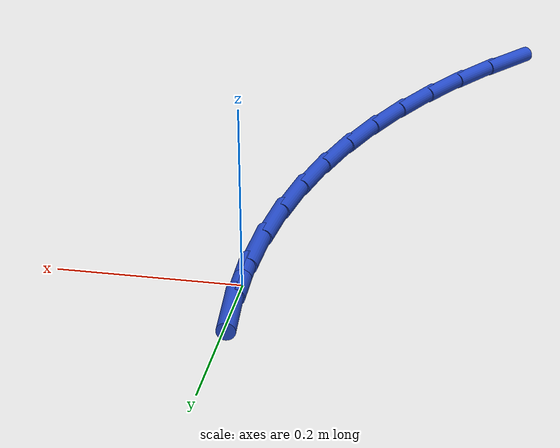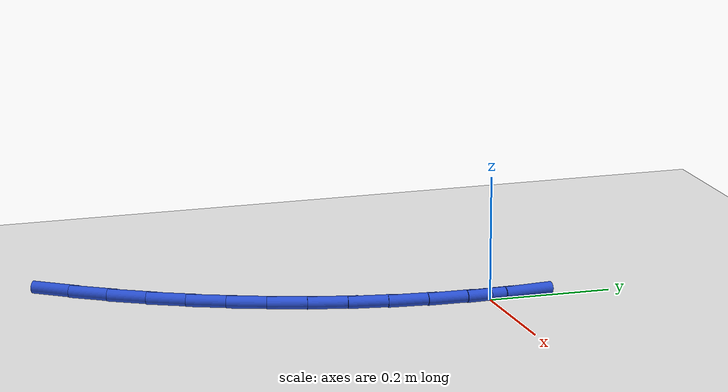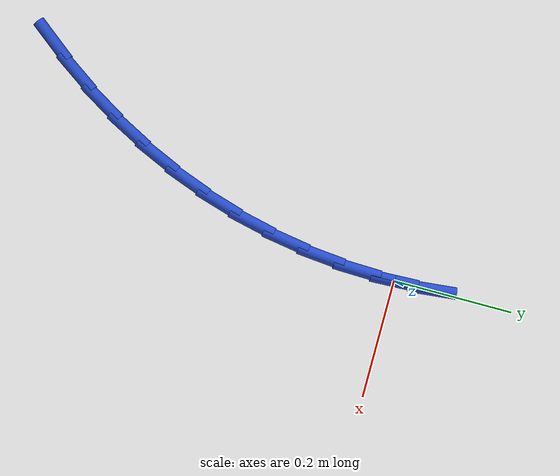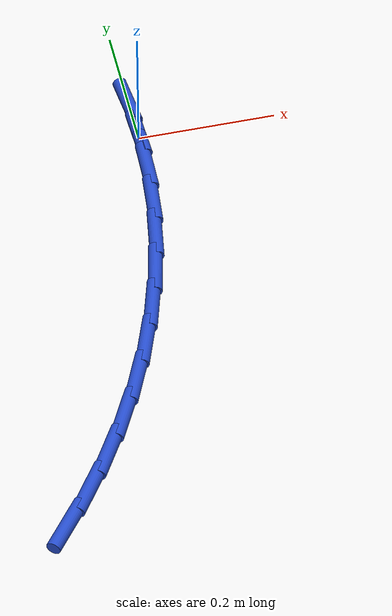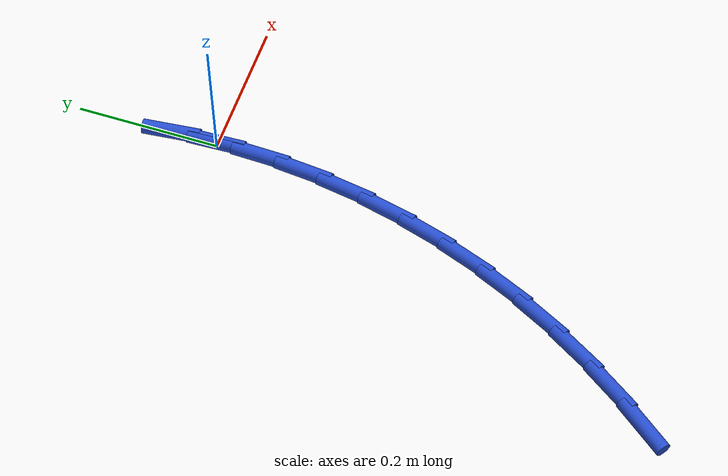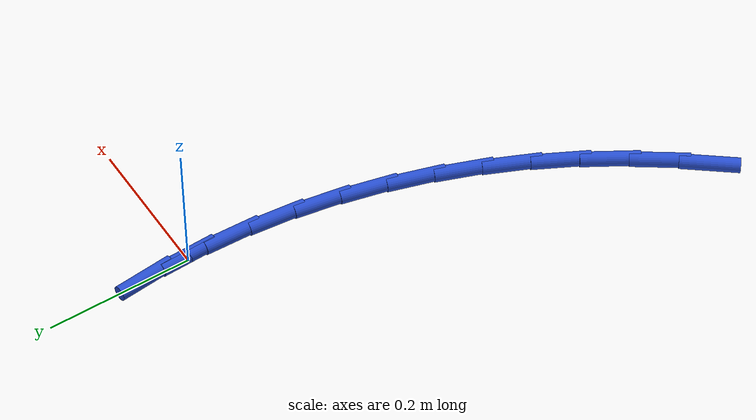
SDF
<sdf version="1.6">
 <world name="default">
  <model name="ground_plane">
   <static>1</static>
   <link name="link">
    <collision name="collision">
     <geometry><plane><normal>0 0 1</normal><size>100 100</size></plane></geometry>
     <surface><friction><ode><mu>100</mu><mu2>50</mu2></ode></friction></surface>
    </collision>
    <visual name="visual">
     <cast_shadows>0</cast_shadows>
     <geometry><plane><normal>0 0 1</normal><size>100 100</size></plane></geometry>
     <material>
      <script><uri>file://media/materials/scripts/gazebo.material</uri><name>Gazebo/WhiteGlow</name></script>
     </material>
    </visual>
   </link>
  </model>
  <model name="line">
   <link name="link_0">
    <pose>1.3877787807814457e-17 -5.551115123125783e-17 0.01 0 1.57 -1.5343372561412016</pose>
    <collision name="collision">
     <geometry><cylinder><radius>0.01</radius><length>0.08</length></cylinder></geometry>
    </collision>
    <visual name="visual">
     <material>
      <script><name>Gazebo/Blue</name><uri>file://media/materials/scripts/gazebo.material</uri></script>
     </material>
     <geometry><cylinder><radius>0.01</radius><length>0.08</length></cylinder></geometry>
    </visual>
   </link>
   <link name="link_1">
    <pose>-0.002334550586202827 0.06400371818220175 0.01 0 1.57 -1.4707915905210531</pose>
    <collision name="collision">
     <geometry><cylinder><radius>0.01</radius><length>0.08</length></cylinder></geometry>
    </collision>
    <visual name="visual">
     <material>
      <script><name>Gazebo/Blue</name><uri>file://media/materials/scripts/gazebo.material</uri></script>
     </material>
     <geometry><cylinder><radius>0.01</radius><length>0.08</length></cylinder></geometry>
    </visual>
   </link>
   <link name="link_99">
    <pose>-0.2355546036604953 -0.6451554243643389 0.01 0 1.57 0.9055986440282378</pose>
    <collision name="collision">
     <geometry><cylinder><radius>0.01</radius><length>0.08</length></cylinder></geometry>
    </collision>
    <visual name="visual">
     <material>
      <script><name>Gazebo/Blue</name><uri>file://media/materials/scripts/gazebo.material</uri></script>
     </material>
     <geometry><cylinder><radius>0.01</radius><length>0.08</length></cylinder></geometry>
    </visual>
   </link>
   <link name="link_100">
    <pose>-0.19570837294489885 -0.5943614176306186 0.01 0 1.57 0.9677367718272512</pose>
    <collision name="collision">
     <geometry><cylinder><radius>0.01</radius><length>0.08</length></cylinder></geometry>
    </collision>
    <visual name="visual">
     <material>
      <script><name>Gazebo/Blue</name><uri>file://media/materials/scripts/gazebo.material</uri></script>
     </material>
     <geometry><cylinder><radius>0.01</radius><length>0.08</length></cylinder></geometry>
    </visual>
   </link>
   <link name="link_101">
    <pose>-0.1591973502243158 -0.5413422214855411 0.01 0 1.57 1.0305575573693264</pose>
    <collision name="collision">
     <geometry><cylinder><radius>0.01</radius><length>0.08</length></cylinder></geometry>
    </collision>
    <visual name="visual">
     <material>
      <script><name>Gazebo/Blue</name><uri>file://media/materials/scripts/gazebo.material</uri></script>
     </material>
     <geometry><cylinder><radius>0.01</radius><length>0.08</length></cylinder></geometry>
    </visual>
   </link>
   <link name="link_102">
    <pose>-0.12625001712408898 -0.48640749772048814 0.01 0 1.57 1.0936674683788838</pose>
    <collision name="collision">
     <geometry><cylinder><radius>0.01</radius><length>0.08</length></cylinder></geometry>
    </collision>
    <visual name="visual">
     <material>
      <script><name>Gazebo/Blue</name><uri>file://media/materials/scripts/gazebo.material</uri></script>
     </material>
     <geometry><cylinder><radius>0.01</radius><length>0.08</length></cylinder></geometry>
    </visual>
   </link>
   <link name="link_103">
    <pose>-0.09696525306851653 -0.4297602330790332 0.01 0 1.57 1.1569260370032584</pose>
    <collision name="collision">
     <geometry><cylinder><radius>0.01</radius><length>0.08</length></cylinder></geometry>
    </collision>
    <visual name="visual">
     <material>
      <script><name>Gazebo/Blue</name><uri>file://media/materials/scripts/gazebo.material</uri></script>
     </material>
     <geometry><cylinder><radius>0.01</radius><length>0.08</length></cylinder></geometry>
    </visual>
   </link>
   <link name="link_104">
    <pose>-0.07140825051045749 -0.3715756866947242 0.01 0 1.57 1.220383617307727</pose>
    <collision name="collision">
     <geometry><cylinder><radius>0.01</radius><length>0.08</length></cylinder></geometry>
    </collision>
    <visual name="visual">
     <material>
      <script><name>Gazebo/Blue</name><uri>file://media/materials/scripts/gazebo.material</uri></script>
     </material>
     <geometry><cylinder><radius>0.01</radius><length>0.08</length></cylinder></geometry>
    </visual>
   </link>
   <link name="link_105">
    <pose>-0.04964420183187866 -0.31202911764275987 0.01 0 1.57 1.2840909810927694</pose>
    <collision name="collision">
     <geometry><cylinder><radius>0.01</radius><length>0.08</length></cylinder></geometry>
    </collision>
    <visual name="visual">
     <material>
      <script><name>Gazebo/Blue</name><uri>file://media/materials/scripts/gazebo.material</uri></script>
     </material>
     <geometry><cylinder><radius>0.01</radius><length>0.08</length></cylinder></geometry>
    </visual>
   </link>
   <link name="link_106">
    <pose>-0.03173829941474573 -0.2512957849983358 0.01 0 1.57 1.348095321227092</pose>
    <collision name="collision">
     <geometry><cylinder><radius>0.01</radius><length>0.08</length></cylinder></geometry>
    </collision>
    <visual name="visual">
     <material>
      <script><name>Gazebo/Blue</name><uri>file://media/materials/scripts/gazebo.material</uri></script>
     </material>
     <geometry><cylinder><radius>0.01</radius><length>0.08</length></cylinder></geometry>
    </visual>
   </link>
   <link name="link_107">
    <pose>-0.017755735641025353 -0.1895509478366513 0.01 0 1.57 1.4124361788182123</pose>
    <collision name="collision">
     <geometry><cylinder><radius>0.01</radius><length>0.08</length></cylinder></geometry>
    </collision>
    <visual name="visual">
     <material>
      <script><name>Gazebo/Blue</name><uri>file://media/materials/scripts/gazebo.material</uri></script>
     </material>
     <geometry><cylinder><radius>0.01</radius><length>0.08</length></cylinder></geometry>
    </visual>
   </link>
   <link name="link_108">
    <pose>-0.007761702892683351 -0.12696986523290177 0.01 0 1.57 1.477141402096492</pose>
    <collision name="collision">
     <geometry><cylinder><radius>0.01</radius><length>0.08</length></cylinder></geometry>
    </collision>
    <visual name="visual">
     <material>
      <script><name>Gazebo/Blue</name><uri>file://media/materials/scripts/gazebo.material</uri></script>
     </material>
     <geometry><cylinder><radius>0.01</radius><length>0.08</length></cylinder></geometry>
    </visual>
   </link>
   <link name="link_109">
    <pose>-0.0018213935516862203 -0.06372779626228611 0.01 0 1.57 1.5422232714286324</pose>
    <collision name="collision">
     <geometry><cylinder><radius>0.01</radius><length>0.08</length></cylinder></geometry>
    </collision>
    <visual name="visual">
     <material>
      <script><name>Gazebo/Blue</name><uri>file://media/materials/scripts/gazebo.material</uri></script>
     </material>
     <geometry><cylinder><radius>0.01</radius><length>0.08</length></cylinder></geometry>
    </visual>
   </link>
   <link name="link_110">
    <pose>2.0816681711721685e-17 -8.326672684688674e-17 0.01 0 1.57 -1.5339176977723896</pose>
    <collision name="collision">
     <geometry><cylinder><radius>0.01</radius><length>0.08</length></cylinder></geometry>
    </collision>
    <visual name="visual">
     <material>
      <script><name>Gazebo/Blue</name><uri>file://media/materials/scripts/gazebo.material</uri></script>
     </material>
     <geometry><cylinder><radius>0.01</radius><length>0.08</length></cylinder></geometry>
    </visual>
   </link>
  </model>
 </world>
</sdf>
